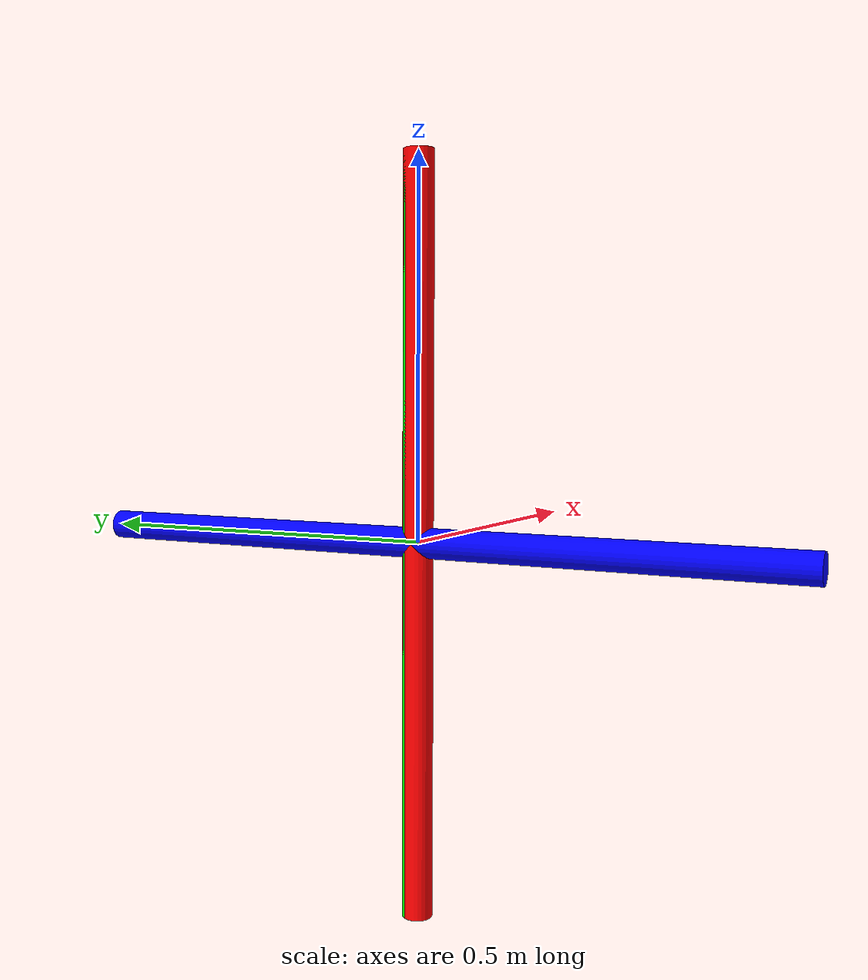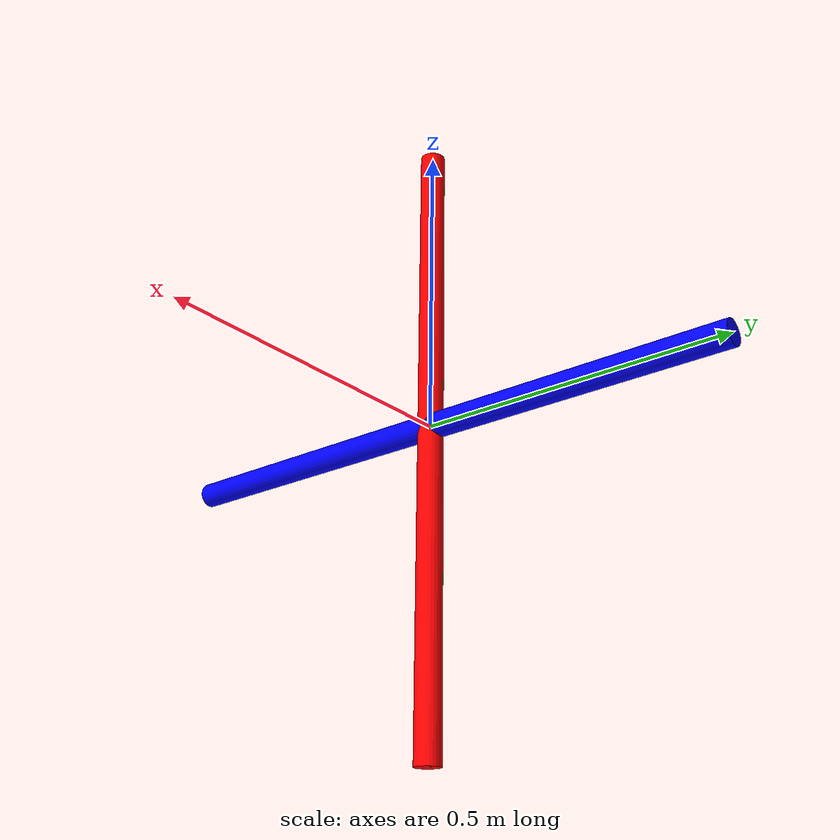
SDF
<?xml version="1.0" ?>
<sdf version="1.6">
  <model name="world_axes">
    <static>true</static>

    <!-- X-axis -->
    <link name="x_axis_link">
      <visual name="x_axis_visual">
        <geometry>
          <cylinder>
            <radius>0.02</radius>
            <length>1.0</length>
          </cylinder>
        </geometry>
        <pose>0 0 0 0 0 0</pose>
        <material>
          <ambient>1 0 0 1</ambient>
          <diffuse>1 0 0 1</diffuse>
        </material>
      </visual>
    </link>

    <!-- Y-axis -->
    <link name="y_axis_link">
      <visual name="y_axis_visual">
        <geometry>
          <cylinder>
            <radius>0.02</radius>
            <length>1.0</length>
          </cylinder>
        </geometry>
        <pose>0 0 0 0 0 1.570796</pose>
        <material>
          <ambient>0 1 0 1</ambient>
          <diffuse>0 1 0 1</diffuse>
        </material>
      </visual>
    </link>

    <!-- Z-axis -->
    <link name="z_axis_link">
      <visual name="z_axis_visual">
        <geometry>
          <cylinder>
            <radius>0.02</radius>
            <length>1.0</length>
          </cylinder>
        </geometry>
        <pose>0 0 0 1.570796 0 0</pose>
        <material>
          <ambient>0 0 1 1</ambient>
          <diffuse>0 0 1 1</diffuse>
        </material>
      </visual>
    </link>
  </model>
</sdf>
